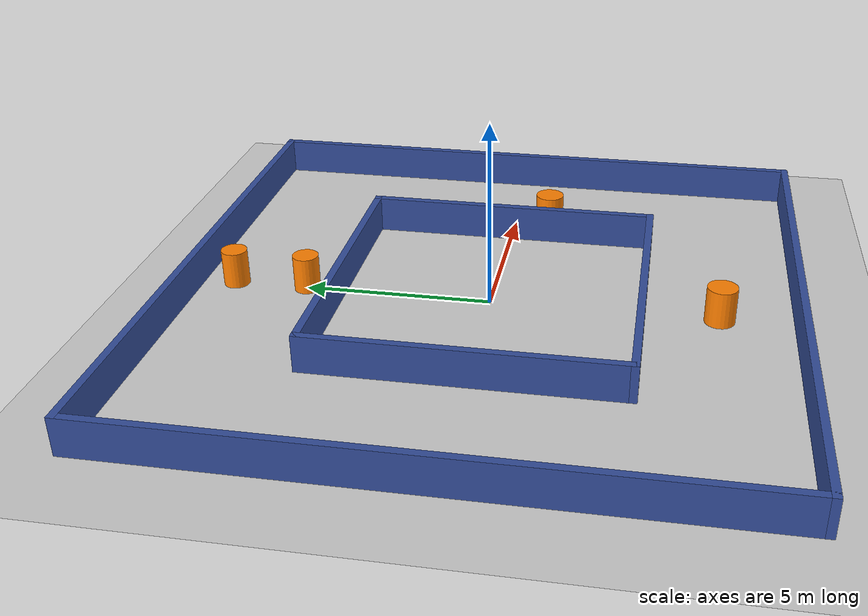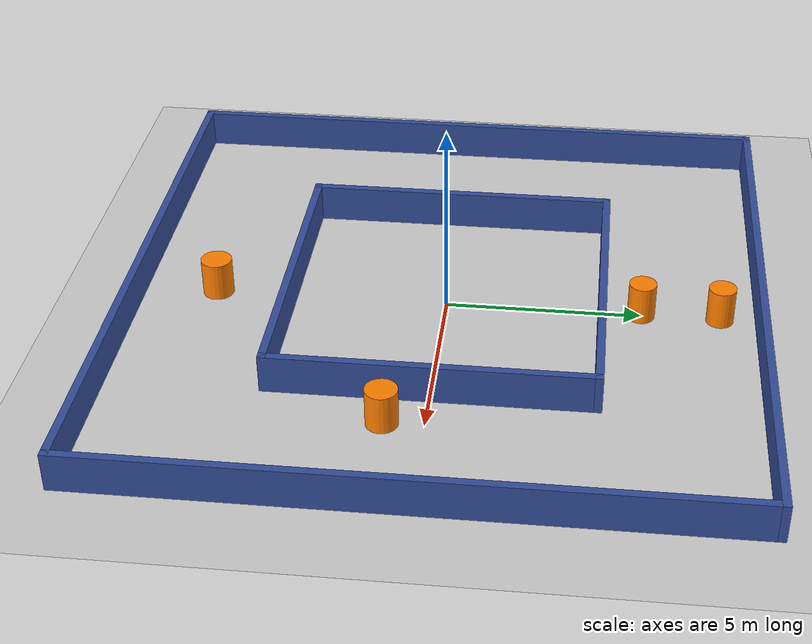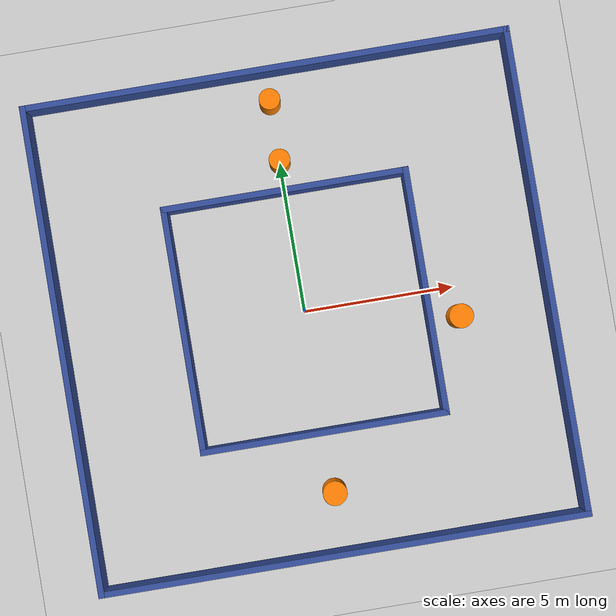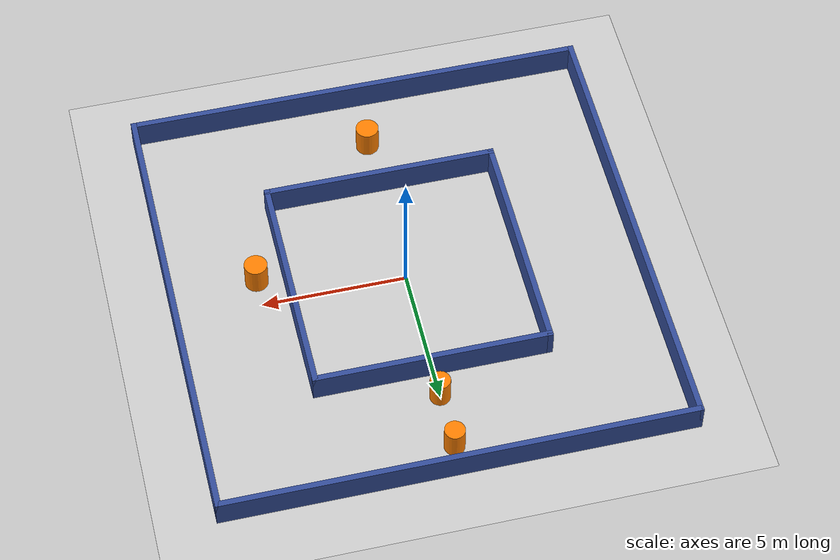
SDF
<?xml version="1.0" ?>
<sdf version="1.8">
  <world name="ftg_world">

    <physics name="1ms" type="ignored">
      <max_step_size>0.001</max_step_size>
      <real_time_factor>1.0</real_time_factor>
    </physics>
    <plugin filename="gz-sim-physics-system" name="gz::sim::systems::Physics"/>
    <plugin filename="gz-sim-user-commands-system" name="gz::sim::systems::UserCommands"/>
    <plugin filename="gz-sim-scene-broadcaster-system" name="gz::sim::systems::SceneBroadcaster"/>
    <plugin filename="gz-sim-sensors-system" name="gz::sim::systems::Sensors">
      <render_engine>ogre2</render_engine>
    </plugin>

    <light type="directional" name="sun">
      <cast_shadows>true</cast_shadows>
      <pose>0 0 10 0 0 0</pose>
      <diffuse>0.8 0.8 0.8 1</diffuse>
      <specular>0.2 0.2 0.2 1</specular>
      <direction>-0.5 0.1 -0.9</direction>
    </light>

    <!-- PISO BASE -->
    <model name="ground_plane">
      <static>true</static>
      <link name="link">
        <collision name="collision"><geometry><plane><normal>0 0 1</normal><size>100 100</size></plane></geometry></collision>
        <visual name="visual">
          <geometry><plane><normal>0 0 1</normal><size>100 100</size></plane></geometry>
          <material><ambient>0.8 0.8 0.8 1</ambient><diffuse>0.8 0.8 0.8 1</diffuse></material>
        </visual>
      </link>
    </model>

    <!-- CIRCUITO FTG Y OBSTÁCULOS                  -->
    <model name="ftg_arena">
      <static>true</static>

      <!-- PAREDES EXTERIORES (16x16 metros) -->
      <link name="out_n"><pose>0 8 0.5 0 0 0</pose><visual name="v"><geometry><box><size>16.2 0.2 1</size></box></geometry><material><ambient>0.2 0.3 0.6 1</ambient></material></visual><collision name="c"><geometry><box><size>16.2 0.2 1</size></box></geometry></collision></link>
      <link name="out_s"><pose>0 -8 0.5 0 0 0</pose><visual name="v"><geometry><box><size>16.2 0.2 1</size></box></geometry><material><ambient>0.2 0.3 0.6 1</ambient></material></visual><collision name="c"><geometry><box><size>16.2 0.2 1</size></box></geometry></collision></link>
      <link name="out_e"><pose>8 0 0.5 0 0 1.5708</pose><visual name="v"><geometry><box><size>16.2 0.2 1</size></box></geometry><material><ambient>0.2 0.3 0.6 1</ambient></material></visual><collision name="c"><geometry><box><size>16.2 0.2 1</size></box></geometry></collision></link>
      <link name="out_w"><pose>-8 0 0.5 0 0 1.5708</pose><visual name="v"><geometry><box><size>16.2 0.2 1</size></box></geometry><material><ambient>0.2 0.3 0.6 1</ambient></material></visual><collision name="c"><geometry><box><size>16.2 0.2 1</size></box></geometry></collision></link>

      <!-- PAREDES INTERIORES (Núcleo central de 8x8 metros) -->
      <link name="in_n"><pose>0 4 0.5 0 0 0</pose><visual name="v"><geometry><box><size>8.2 0.2 1</size></box></geometry><material><ambient>0.2 0.3 0.6 1</ambient></material></visual><collision name="c"><geometry><box><size>8.2 0.2 1</size></box></geometry></collision></link>
      <link name="in_s"><pose>0 -4 0.5 0 0 0</pose><visual name="v"><geometry><box><size>8.2 0.2 1</size></box></geometry><material><ambient>0.2 0.3 0.6 1</ambient></material></visual><collision name="c"><geometry><box><size>8.2 0.2 1</size></box></geometry></collision></link>
      <link name="in_e"><pose>4 0 0.5 0 0 1.5708</pose><visual name="v"><geometry><box><size>8.2 0.2 1</size></box></geometry><material><ambient>0.2 0.3 0.6 1</ambient></material></visual><collision name="c"><geometry><box><size>8.2 0.2 1</size></box></geometry></collision></link>
      <link name="in_w"><pose>-4 0 0.5 0 0 1.5708</pose><visual name="v"><geometry><box><size>8.2 0.2 1</size></box></geometry><material><ambient>0.2 0.3 0.6 1</ambient></material></visual><collision name="c"><geometry><box><size>8.2 0.2 1</size></box></geometry></collision></link>

      <!-- OBSTÁCULO 1: Pasillo Sur (Pilar Simétrico) -->
      <link name="obs_south">
        <pose>0 -6 0.5 0 0 0</pose>
        <visual name="v"><geometry><cylinder><radius>0.4</radius><length>1</length></cylinder></geometry><material><ambient>1 0.5 0 1</ambient></material></visual>
        <collision name="c"><geometry><cylinder><radius>0.4</radius><length>1</length></cylinder></geometry></collision>
      </link>

      <!-- OBSTÁCULO 2: Pasillo Este (La Trampa Descentrada) -->
      <!-- Crea un hueco de 0.8m a la izquierda y 2.4m a la derecha -->
      <link name="obs_east">
        <pose>5 -1 0.5 0 0 0</pose>
        <visual name="v"><geometry><cylinder><radius>0.4</radius><length>1</length></cylinder></geometry><material><ambient>1 0.5 0 1</ambient></material></visual>
        <collision name="c"><geometry><cylinder><radius>0.4</radius><length>1</length></cylinder></geometry></collision>
      </link>

      <!-- OBSTÁCULOS 3: Pasillo Norte (Triple Hueco) -->
      <link name="obs_north_1">
        <pose>0 5 0.5 0 0 0</pose>
        <visual name="v"><geometry><cylinder><radius>0.35</radius><length>1</length></cylinder></geometry><material><ambient>1 0.5 0 1</ambient></material></visual>
        <collision name="c"><geometry><cylinder><radius>0.35</radius><length>1</length></cylinder></geometry></collision>
      </link>
      <link name="obs_north_2">
        <pose>0 7 0.5 0 0 0</pose>
        <visual name="v"><geometry><cylinder><radius>0.35</radius><length>1</length></cylinder></geometry><material><ambient>1 0.5 0 1</ambient></material></visual>
        <collision name="c"><geometry><cylinder><radius>0.35</radius><length>1</length></cylinder></geometry></collision>
      </link>

    </model>
  </world>
</sdf>
